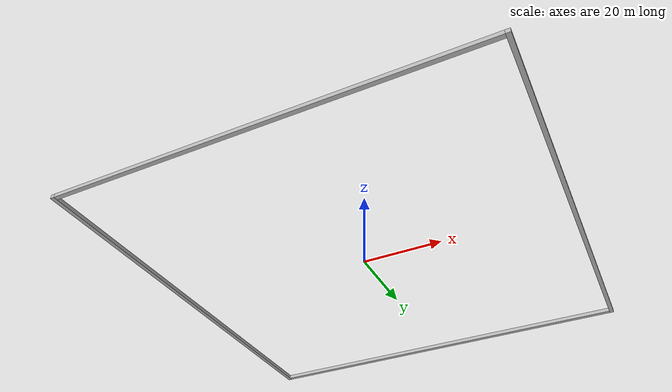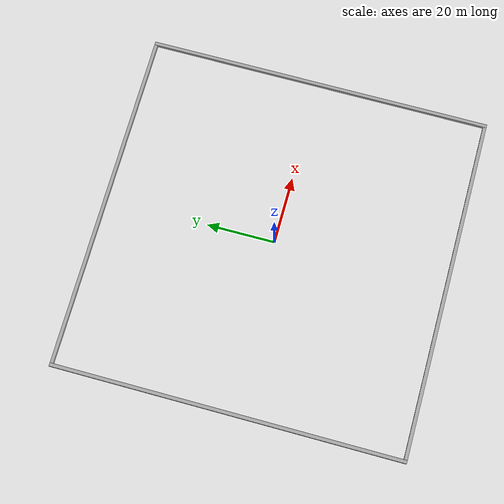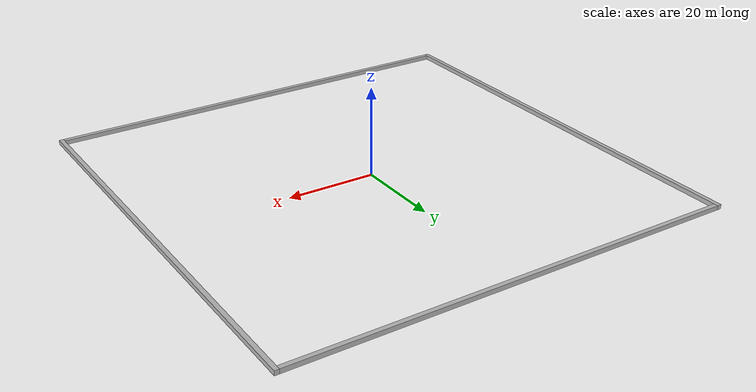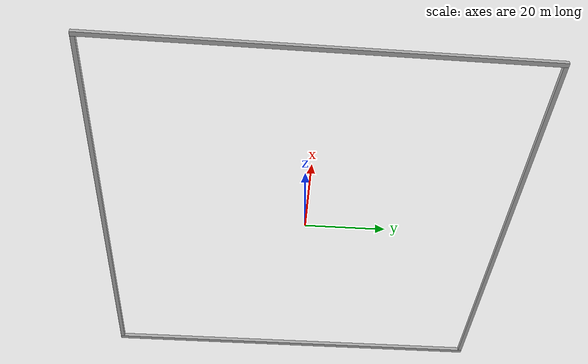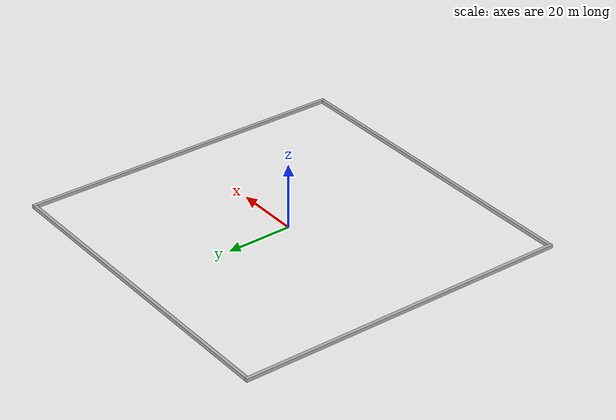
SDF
<?xml version='1.0'?>
<sdf version="1.5">
  <model name="trajectory border">
    <pose>0 0 0.5 0 0 0</pose>
    <static>true</static>
    <link name="linkX0Y50">
      <collision name="collision">
        <geometry>
          <box>
            <size>100 1 1</size>
          </box>
        </geometry>
      </collision>
      <visual name="visual">
        <pose>0 50.5 0 0 0 0</pose>
        <geometry>
          <box>
            <size>100 1 1</size>
          </box>
        </geometry>
      </visual>
    </link>
    <link name="linkX0Y-50">
      <collision name="collision">
        <geometry>
          <box>
            <size>100 1 1</size>
          </box>
        </geometry>
      </collision>
      <visual name="visual">
        <pose>0 -50.5 0 0 0 0</pose>
        <geometry>
          <box>
            <size>100 1 1</size>
          </box>
        </geometry>
      </visual>
    </link><static>true</static>
    <link name="linkX50Y0">
      <collision name="collision">
        <geometry>
          <box>
            <size>1 102 1</size>
          </box>
        </geometry>
      </collision>
      <visual name="visual">
        <pose>50.5 0 0 0 0 0</pose>
        <geometry>
          <box>
            <size>1 102 1</size>
          </box>
        </geometry>
      </visual>
    </link>
    <link name="linkX-50Y0">
      <collision name="collision">
        <geometry>
          <box>
            <size>1 102 1</size>
          </box>
        </geometry>
      </collision>
      <visual name="visual">
        <pose>-50.5 0 0 0 0 0</pose>
        <geometry>
          <box>
            <size>1 102 1</size>
          </box>
        </geometry>
      </visual>
    </link>
  </model>
</sdf>
